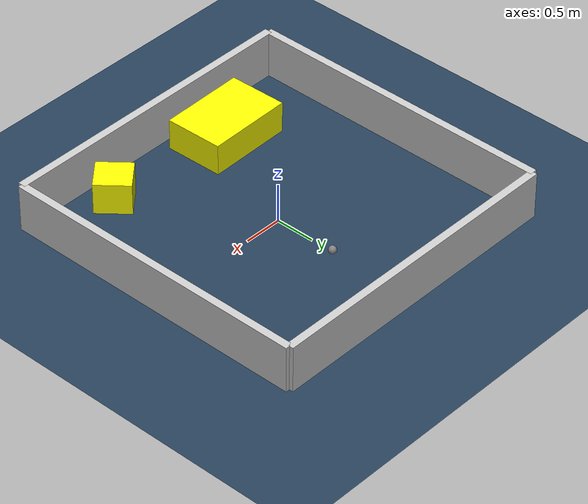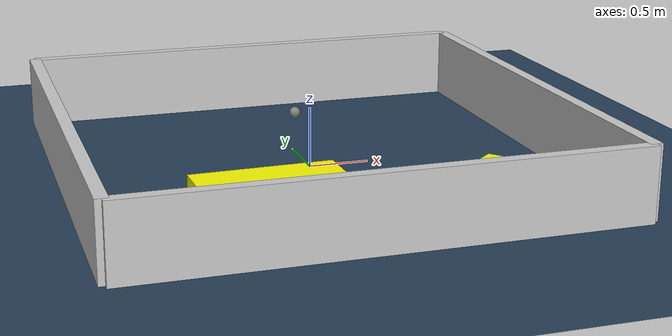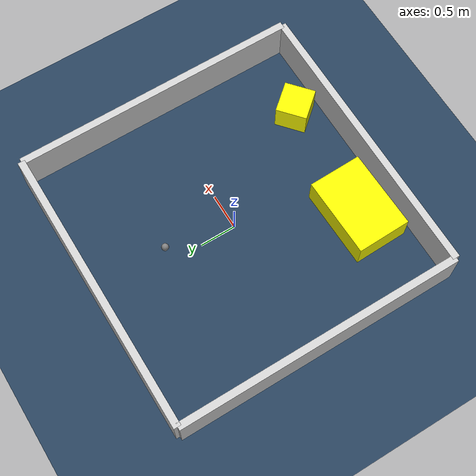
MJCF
<?xml version="1.0" ?>
<mujoco model="generated_environment">
  <option timestep="0.01" integrator="RK4" cone="elliptic"/>
  <default>
    <geom density="1"/>
  </default>
  <asset>
    <texture builtin="gradient" height="3072" rgb1="0.3 0.5 0.7" rgb2="0 0 0" type="skybox" width="512"/>
    <texture builtin="checker" height="300" mark="edge" markrgb="0.8 0.8 0.8" name="groundplane" rgb1="0.2 0.3 0.4" rgb2="0.1 0.2 0.3" type="2d" width="300"/>
    <material name="groundplane" reflectance="0.2" texrepeat="5 5" texture="groundplane" texuniform="true"/>
    <material name="robot" rgba="0.0 1.0 0.0 1"/>
  </asset>
  <worldbody>
    <light dir="0 0 -1" directional="true" pos="0 0 1.5"/>
    <geom condim="4" friction="1.0 0.005 0.001" material="groundplane" name="floor" size="0 0 0.05" type="plane"/>
    <body name="walls">
      <geom name="wall_1" condim="4" pos="-2.0 0.0 0.3" rgba="0.800000011920929 0.800000011920929 0.800000011920929 1.0" size="0.05 2.0 0.3" type="box"/>
      <geom name="wall_2" condim="4" pos="2.0 0.0 0.3" rgba="0.800000011920929 0.800000011920929 0.800000011920929 1.0" size="0.05 2.0 0.3" type="box"/>
      <geom name="wall_3" condim="4" pos="0.0 -2.0 0.3" rgba="0.800000011920929 0.800000011920929 0.800000011920929 1.0" size="2.0 0.05 0.3" type="box"/>
      <geom name="wall_4" condim="4" pos="0.0 2.0 0.3" rgba="0.800000011920929 0.800000011920929 0.800000011920929 1.0" size="2.0 0.05 0.3" type="box"/>
    </body>
    <body name="robot">
      <joint name="joint_x" type="slide" pos="0 0 0" axis="1 0 0"/>
      <joint name="joint_y" type="slide" pos="0 0 0" axis="0 1 0"/>
      <geom name="robot" type="sphere" pos="0.1553375253249436 0.949245698466318 0.2" size="0.05" mass="5." friction="1.0 0.005 0.0001" condim="4"/>
      <site name="sensor_ball"/>
    </body>
    <body name="obstacle_1_movable">
      <geom name="obstacle_1_movable" condim="4" pos="0.9971563794152998 -1.5836748318782856 0.2" euler="0 0 220.61843033800386" friction="1.0 0.005 0.001" rgba="1 1 0 1" size="0.21500186875748392 0.2229770639214551 0.2" type="box" mass="0.1"/>
      <joint type="free"/>
    </body>
    <body name="obstacle_2_movable">
      <geom name="obstacle_2_movable" condim="4" pos="-0.6993792916425247 -1.4611086290840565 0.2" euler="0 0 91.34512732812426" friction="1.0 0.005 0.001" rgba="1 1 0 1" size="0.3747474592315251 0.5537005050437636 0.2" type="box" mass="0.1"/>
      <joint type="free"/>
    </body>
  </worldbody>
  <actuator>
    <motor name="actuator_x" joint="joint_x" gear="1" ctrlrange="-1 1"/>
    <motor name="actuator_y" joint="joint_y" gear="1" ctrlrange="-1 1"/>
  </actuator>
</mujoco>
